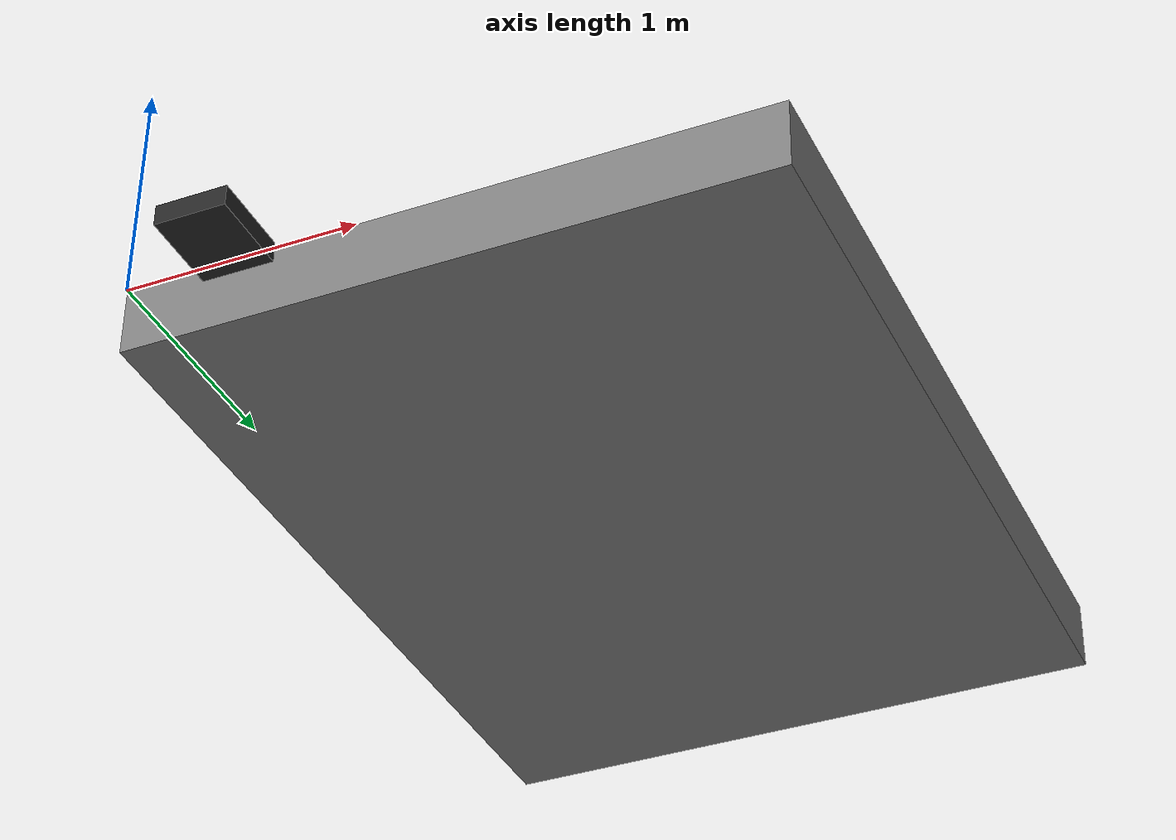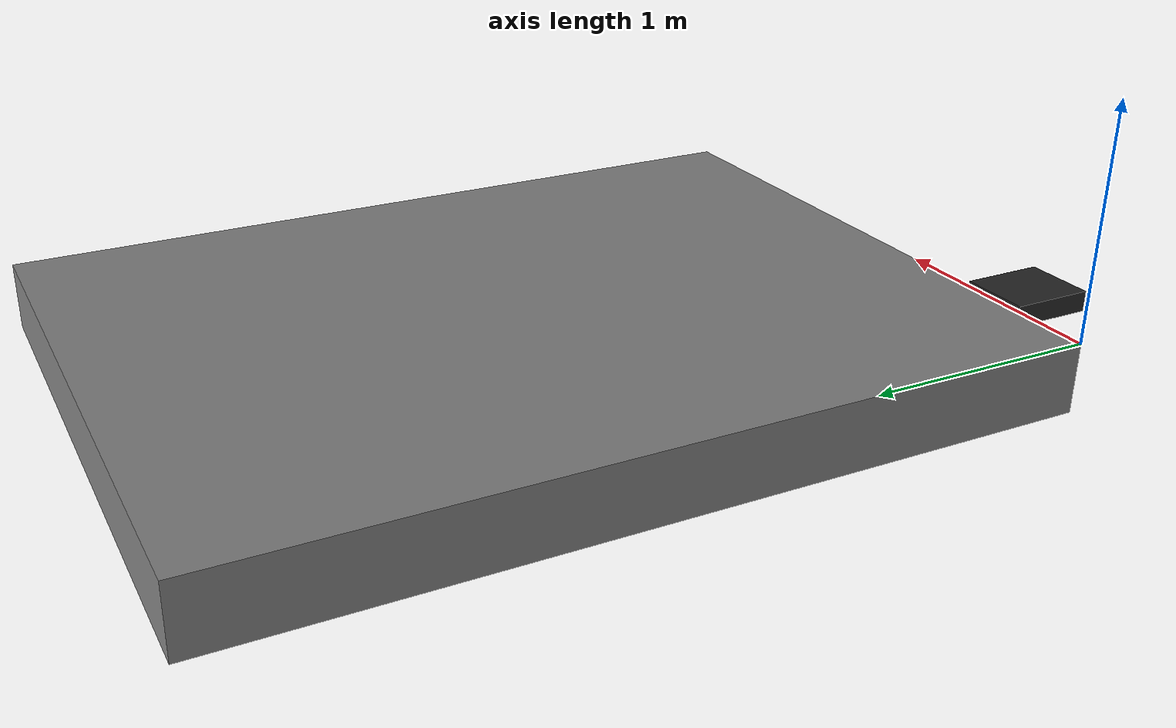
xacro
<?xml version="1.0" encoding="utf-8"?>
<robot xmlns:xacro="http://www.ros.org/wiki/xacro" name="panda">
  <xacro:property name="in2m" value="0.0254"/>
  <xacro:property name="ft2m" value="0.3048"/>
  <xacro:property name="tablex" value="${9*ft2m}"/>
  <xacro:property name="tabley" value="${12*ft2m}"/>
  <xacro:property name="tablez" value="${1*ft2m}"/>
  <xacro:property name="pandax" value="${19.5*in2m}"/>
  <xacro:property name="panday" value="${-4.25*in2m}"/>
  <xacro:property name="pandaz" value="${0*in2m}"/>
  <xacro:property name="pandamountx" value="${1*ft2m}"/>
  <xacro:property name="pandamounty" value="${1.2*ft2m}"/>
  <xacro:property name="pandamountz" value="${0.3*ft2m}"/>
  <xacro:property name="pandamountzoffset" value="${1*in2m}"/>
  <link name="table">
    <visual>
      <origin xyz="${tablex/2} ${tabley/2} ${-tablez/2}" rpy="0 0 0"/>
      <geometry>
        <box size="${tablex} ${tabley} ${tablez}"/>
      </geometry>
      <material name="grey">
        <color rgba="0.5 0.5 0.5 1.0"/>
      </material>
    </visual>
    <visual>
      <origin xyz="${pandax} ${-pandamounty/2} ${-pandamountz/2+pandamountzoffset}" rpy="0 0 0"/>
      <geometry>
        <box size="${pandamountx} ${pandamounty} ${pandamountz}"/>
      </geometry>
      <material name="black">
        <color rgba="0.15 0.15 0.15 1.0"/>
      </material>
    </visual>
  </link>
</robot>
